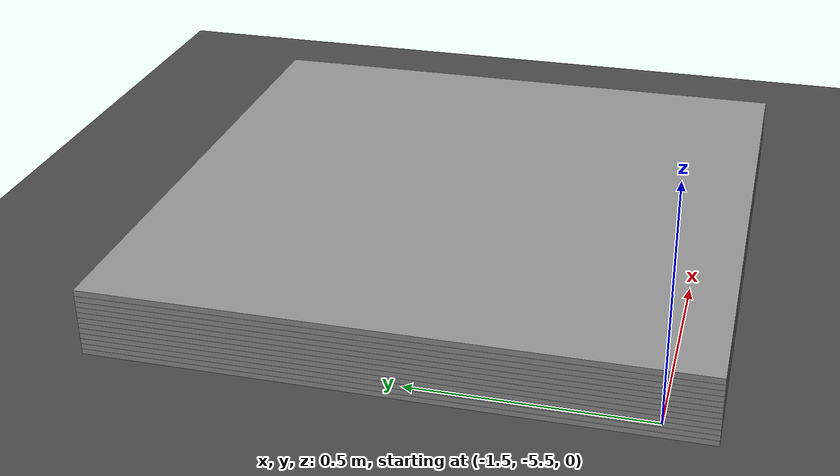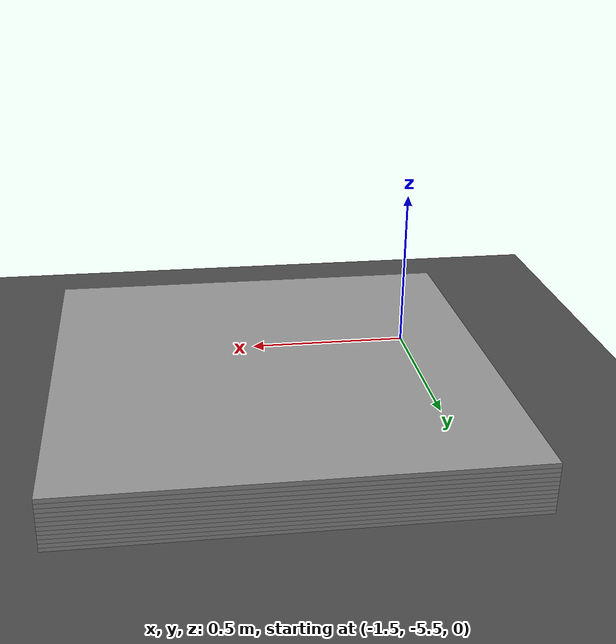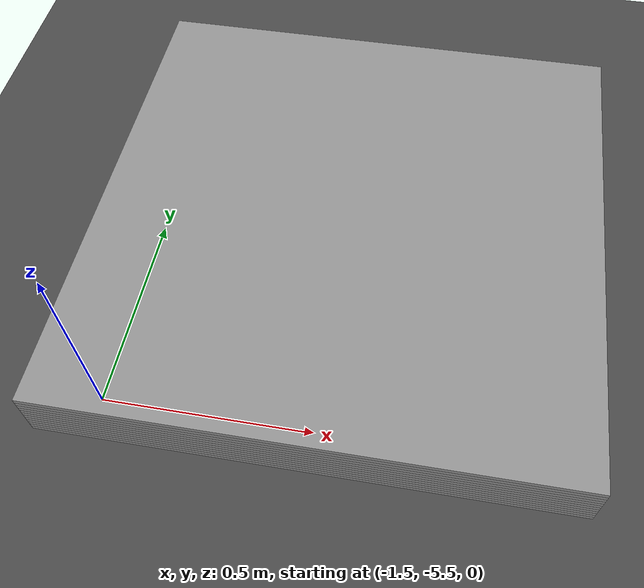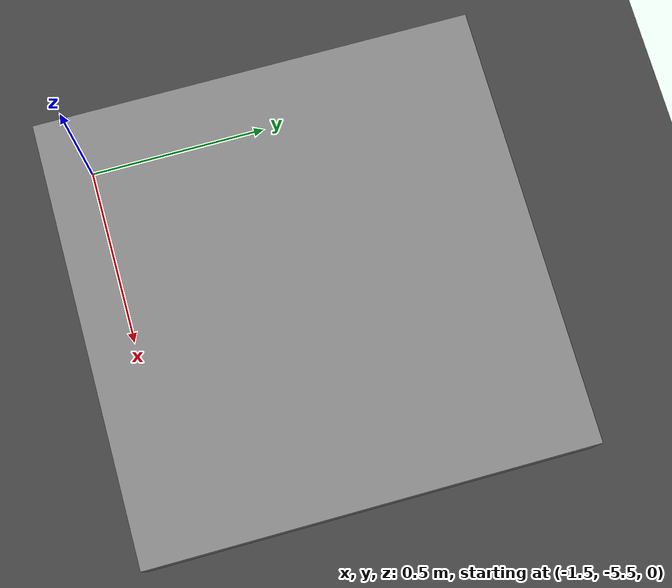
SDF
<sdf version="1.6">
 <world name="default">
  <light name="sun" type="directional">
   <pose>0 0 10 0 -0 0</pose>
   <diffuse>0.8 0.8 0.8 1</diffuse>
   <specular>0.2 0.2 0.2 1</specular>
   <attenuation>
    <range>1000</range>
    <constant>0.9</constant>
    <linear>0.01</linear>
    <quadratic>0.001</quadratic>
   </attenuation>
   <direction>-0.5 0.1 -0.9</direction>
  </light>
  <model name="ground_plane">
   <static>1</static>
   <link name="link">
    <collision name="collision">
     <geometry><plane><normal>0 0 1</normal><size>100 100</size></plane></geometry>
     <surface><friction><ode><mu>100</mu><mu2>50</mu2></ode></friction></surface>
    </collision>
    <visual name="visual">
     <cast_shadows>0</cast_shadows>
     <geometry><plane><normal>0 0 1</normal><size>100 100</size></plane></geometry>
     <material>
      <script><uri>file://media/materials/scripts/gazebo.material</uri><name>Gazebo/Grey</name></script>
     </material>
    </visual>
    <velocity_decay><linear>0</linear><angular>0</angular></velocity_decay>
   </link>
  </model>
  <physics name="default_physics" default="0" type="ode">
   <max_step_size>0.01</max_step_size>
   <real_time_factor>1</real_time_factor>
   <real_time_update_rate>100</real_time_update_rate>
  </physics>
  <scene><ambient>0.4 0.4 0.4 1</ambient><background>0.7 0.7 0.7 1</background><shadows>1</shadows></scene>
  <model name="asphalt_plane">
   <static>1</static>
   <link name="link">
    <collision name="collision"><geometry><box><size>20 20 0.1</size></box></geometry></collision>
    <visual name="visual">
     <cast_shadows>0</cast_shadows>
     <geometry><box><size>20 20 0.1</size></box></geometry>
     <material>
      <script>
       <uri>model://asphalt_plane/materials/scripts</uri>
       <uri>model://asphalt_plane/materials/textures</uri>
       <name>vrc/asphalt</name>
      </script>
     </material>
    </visual>
    <velocity_decay><linear>0</linear><angular>0</angular></velocity_decay>
   </link>
  </model>
  <gravity>0 0 -9.8</gravity>
  <magnetic_field>6e-06 2.3e-05 -4.2e-05</magnetic_field>
  <atmosphere type="adiabatic"/>
  <spherical_coordinates>
   <surface_model>EARTH_WGS84</surface_model>
   <latitude_deg>0</latitude_deg>
   <longitude_deg>0</longitude_deg>
   <elevation>0</elevation>
   <heading_deg>0</heading_deg>
  </spherical_coordinates>
  <model name="drywall_panel0">
   <static>0</static>
   <link name="link">
    <pose>0 0 0.6096 0 -0 0</pose>
    <collision name="collision">
     <geometry><box><size>1.2192 0.0127 1.2192</size></box></geometry>
     <surface><contact><ode><max_vel>0</max_vel><min_depth>0.001</min_depth></ode></contact></surface>
    </collision>
    <visual name="visual">
     <cast_shadows>0</cast_shadows>
     <geometry><box><size>1.2192 0.0127 1.2192</size></box></geometry>
     <material>
      <script>
       <uri>model://grey_wall/materials/scripts</uri>
       <uri>model://grey_wall/materials/textures</uri>
       <name>vrc/grey_wall</name>
      </script>
     </material>
    </visual>
    <inertial>
     <inertia><ixx>1</ixx><ixy>0</ixy><ixz>0</ixz><iyy>1</iyy><iyz>0</iyz><izz>1</izz></inertia>
     <mass>1</mass>
    </inertial>
   </link>
   <pose>-0.999992 -4.39039 0.055292 1.57078 1.1e-05 2e-06</pose>
  </model>
  <model name="drywall_panel1">
   <static>0</static>
   <link name="link">
    <pose>0 0 0.6096 0 -0 0</pose>
    <collision name="collision">
     <geometry><box><size>1.2192 0.0127 1.2192</size></box></geometry>
     <surface><contact><ode><max_vel>0</max_vel><min_depth>0.001</min_depth></ode></contact></surface>
    </collision>
    <visual name="visual">
     <cast_shadows>0</cast_shadows>
     <geometry><box><size>1.2192 0.0127 1.2192</size></box></geometry>
     <material>
      <script>
       <uri>model://grey_wall/materials/scripts</uri>
       <uri>model://grey_wall/materials/textures</uri>
       <name>vrc/grey_wall</name>
      </script>
     </material>
    </visual>
    <inertial>
     <inertia><ixx>1</ixx><ixy>0</ixy><ixz>0</ixz><iyy>1</iyy><iyz>0</iyz><izz>1</izz></inertia>
     <mass>1</mass>
    </inertial>
   </link>
   <pose>-0.999963 -4.39036 0.066949 1.57075 3.1e-05 1.2e-05</pose>
  </model>
  <model name="drywall_panel2">
   <static>0</static>
   <link name="link">
    <pose>0 0 0.6096 0 -0 0</pose>
    <collision name="collision">
     <geometry><box><size>1.2192 0.0127 1.2192</size></box></geometry>
     <surface><contact><ode><max_vel>0</max_vel><min_depth>0.001</min_depth></ode></contact></surface>
    </collision>
    <visual name="visual">
     <cast_shadows>0</cast_shadows>
     <geometry><box><size>1.2192 0.0127 1.2192</size></box></geometry>
     <material>
      <script>
       <uri>model://grey_wall/materials/scripts</uri>
       <uri>model://grey_wall/materials/textures</uri>
       <name>vrc/grey_wall</name>
      </script>
     </material>
    </visual>
    <inertial>
     <inertia><ixx>1</ixx><ixy>0</ixy><ixz>0</ixz><iyy>1</iyy><iyz>0</iyz><izz>1</izz></inertia>
     <mass>1</mass>
    </inertial>
   </link>
   <pose>-0.999936 -4.39032 0.078615 1.57074 4.7e-05 2.2e-05</pose>
  </model>
  <model name="drywall_panel3">
   <static>0</static>
   <link name="link">
    <pose>0 0 0.6096 0 -0 0</pose>
    <collision name="collision">
     <geometry><box><size>1.2192 0.0127 1.2192</size></box></geometry>
     <surface><contact><ode><max_vel>0</max_vel><min_depth>0.001</min_depth></ode></contact></surface>
    </collision>
    <visual name="visual">
     <cast_shadows>0</cast_shadows>
     <geometry><box><size>1.2192 0.0127 1.2192</size></box></geometry>
     <material>
      <script>
       <uri>model://grey_wall/materials/scripts</uri>
       <uri>model://grey_wall/materials/textures</uri>
       <name>vrc/grey_wall</name>
      </script>
     </material>
    </visual>
    <inertial>
     <inertia><ixx>1</ixx><ixy>0</ixy><ixz>0</ixz><iyy>1</iyy><iyz>0</iyz><izz>1</izz></inertia>
     <mass>1</mass>
    </inertial>
   </link>
   <pose>-0.999911 -4.39029 0.090293 1.57073 5.8e-05 3.7e-05</pose>
  </model>
  <model name="drywall_panel4">
   <static>0</static>
   <link name="link">
    <pose>0 0 0.6096 0 -0 0</pose>
    <collision name="collision">
     <geometry><box><size>1.2192 0.0127 1.2192</size></box></geometry>
     <surface><contact><ode><max_vel>0</max_vel><min_depth>0.001</min_depth></ode></contact></surface>
    </collision>
    <visual name="visual">
     <cast_shadows>0</cast_shadows>
     <geometry><box><size>1.2192 0.0127 1.2192</size></box></geometry>
     <material>
      <script>
       <uri>model://grey_wall/materials/scripts</uri>
       <uri>model://grey_wall/materials/textures</uri>
       <name>vrc/grey_wall</name>
      </script>
     </material>
    </visual>
    <inertial>
     <inertia><ixx>1</ixx><ixy>0</ixy><ixz>0</ixz><iyy>1</iyy><iyz>0</iyz><izz>1</izz></inertia>
     <mass>1</mass>
    </inertial>
   </link>
   <pose>-0.999889 -4.39026 0.101983 1.57073 6.5e-05 5.1e-05</pose>
  </model>
  <model name="drywall_panel5">
   <static>0</static>
   <link name="link">
    <pose>0 0 0.6096 0 -0 0</pose>
    <collision name="collision">
     <geometry><box><size>1.2192 0.0127 1.2192</size></box></geometry>
     <surface><contact><ode><max_vel>0</max_vel><min_depth>0.001</min_depth></ode></contact></surface>
    </collision>
    <visual name="visual">
     <cast_shadows>0</cast_shadows>
     <geometry><box><size>1.2192 0.0127 1.2192</size></box></geometry>
     <material>
      <script>
       <uri>model://grey_wall/materials/scripts</uri>
       <uri>model://grey_wall/materials/textures</uri>
       <name>vrc/grey_wall</name>
      </script>
     </material>
    </visual>
    <inertial>
     <inertia><ixx>1</ixx><ixy>0</ixy><ixz>0</ixz><iyy>1</iyy><iyz>0</iyz><izz>1</izz></inertia>
     <mass>1</mass>
    </inertial>
   </link>
   <pose>-0.99987 -4.39023 0.113681 1.57075 4.7e-05 6.1e-05</pose>
  </model>
  <model name="drywall_panel6">
   <static>0</static>
   <link name="link">
    <pose>0 0 0.6096 0 -0 0</pose>
    <collision name="collision">
     <geometry><box><size>1.2192 0.0127 1.2192</size></box></geometry>
     <surface><contact><ode><max_vel>0</max_vel><min_depth>0.001</min_depth></ode></contact></surface>
    </collision>
    <visual name="visual">
     <cast_shadows>0</cast_shadows>
     <geometry><box><size>1.2192 0.0127 1.2192</size></box></geometry>
     <material>
      <script>
       <uri>model://grey_wall/materials/scripts</uri>
       <uri>model://grey_wall/materials/textures</uri>
       <name>vrc/grey_wall</name>
      </script>
     </material>
    </visual>
    <inertial>
     <inertia><ixx>1</ixx><ixy>0</ixy><ixz>0</ixz><iyy>1</iyy><iyz>0</iyz><izz>1</izz></inertia>
     <mass>1</mass>
    </inertial>
   </link>
   <pose>-0.999858 -4.3902 0.125403 1.57077 -3e-06 7.1e-05</pose>
  </model>
  <model name="drywall_panel7">
   <static>0</static>
   <link name="link">
    <pose>0 0 0.6096 0 -0 0</pose>
    <collision name="collision">
     <geometry><box><size>1.2192 0.0127 1.2192</size></box></geometry>
     <surface><contact><ode><max_vel>0</max_vel><min_depth>0.001</min_depth></ode></contact></surface>
    </collision>
    <visual name="visual">
     <cast_shadows>0</cast_shadows>
     <geometry><box><size>1.2192 0.0127 1.2192</size></box></geometry>
     <material>
      <script>
       <uri>model://grey_wall/materials/scripts</uri>
       <uri>model://grey_wall/materials/textures</uri>
       <name>vrc/grey_wall</name>
      </script>
     </material>
    </visual>
    <inertial>
     <inertia><ixx>1</ixx><ixy>0</ixy><ixz>0</ixz><iyy>1</iyy><iyz>0</iyz><izz>1</izz></inertia>
     <mass>1</mass>
    </inertial>
   </link>
   <pose>-0.999848 -4.39018 0.137111 1.57079 -3.2e-05 7.8e-05</pose>
  </model>
  <model name="drywall_panel8">
   <static>0</static>
   <link name="link">
    <pose>0 0 0.6096 0 -0 0</pose>
    <collision name="collision">
     <geometry><box><size>1.2192 0.0127 1.2192</size></box></geometry>
     <surface><contact><ode><max_vel>0</max_vel><min_depth>0.001</min_depth></ode></contact></surface>
    </collision>
    <visual name="visual">
     <cast_shadows>0</cast_shadows>
     <geometry><box><size>1.2192 0.0127 1.2192</size></box></geometry>
     <material>
      <script>
       <uri>model://grey_wall/materials/scripts</uri>
       <uri>model://grey_wall/materials/textures</uri>
       <name>vrc/grey_wall</name>
      </script>
     </material>
    </visual>
    <inertial>
     <inertia><ixx>1</ixx><ixy>0</ixy><ixz>0</ixz><iyy>1</iyy><iyz>0</iyz><izz>1</izz></inertia>
     <mass>1</mass>
    </inertial>
   </link>
   <pose>-0.999841 -4.39015 0.148909 1.57072 -0.000177 8.4e-05</pose>
  </model>
  <model name="drywall_panel9">
   <static>0</static>
   <link name="link">
    <pose>0 0 0.6096 0 -0 0</pose>
    <collision name="collision">
     <geometry><box><size>1.2192 0.0127 1.2192</size></box></geometry>
     <surface><contact><ode><max_vel>0</max_vel><min_depth>0.001</min_depth></ode></contact></surface>
    </collision>
    <visual name="visual">
     <cast_shadows>0</cast_shadows>
     <geometry><box><size>1.2192 0.0127 1.2192</size></box></geometry>
     <material>
      <script>
       <uri>model://grey_wall/materials/scripts</uri>
       <uri>model://grey_wall/materials/textures</uri>
       <name>vrc/grey_wall</name>
      </script>
     </material>
    </visual>
    <inertial>
     <inertia><ixx>1</ixx><ixy>0</ixy><ixz>0</ixz><iyy>1</iyy><iyz>0</iyz><izz>1</izz></inertia>
     <mass>1</mass>
    </inertial>
   </link>
   <pose>-0.999839 -4.39013 0.160851 1.57064 -0.000411 8.8e-05</pose>
  </model>
  <model name="drywall_panel10">
   <static>0</static>
   <link name="link">
    <pose>0 0 0.6096 0 -0 0</pose>
    <collision name="collision">
     <geometry><box><size>1.2192 0.0127 1.2192</size></box></geometry>
     <surface><contact><ode><max_vel>0</max_vel><min_depth>0.001</min_depth></ode></contact></surface>
    </collision>
    <visual name="visual">
     <cast_shadows>0</cast_shadows>
     <geometry><box><size>1.2192 0.0127 1.2192</size></box></geometry>
     <material>
      <script>
       <uri>model://grey_wall/materials/scripts</uri>
       <uri>model://grey_wall/materials/textures</uri>
       <name>vrc/grey_wall</name>
      </script>
     </material>
    </visual>
    <inertial>
     <inertia><ixx>1</ixx><ixy>0</ixy><ixz>0</ixz><iyy>1</iyy><iyz>0</iyz><izz>1</izz></inertia>
     <mass>1</mass>
    </inertial>
   </link>
   <pose>-0.999841 -4.39012 0.173113 1.57058 -0.000595 9e-05</pose>
  </model>
  <model name="drywall_panel11">
   <static>0</static>
   <link name="link">
    <pose>0 0 0.6096 0 -0 0</pose>
    <collision name="collision">
     <geometry><box><size>1.2192 0.0127 1.2192</size></box></geometry>
     <surface><contact><ode><max_vel>0</max_vel><min_depth>0.001</min_depth></ode></contact></surface>
    </collision>
    <visual name="visual">
     <cast_shadows>0</cast_shadows>
     <geometry><box><size>1.2192 0.0127 1.2192</size></box></geometry>
     <material>
      <script>
       <uri>model://grey_wall/materials/scripts</uri>
       <uri>model://grey_wall/materials/textures</uri>
       <name>vrc/grey_wall</name>
      </script>
     </material>
    </visual>
    <inertial>
     <inertia><ixx>1</ixx><ixy>0</ixy><ixz>0</ixz><iyy>1</iyy><iyz>0</iyz><izz>1</izz></inertia>
     <mass>1</mass>
    </inertial>
   </link>
   <pose>-0.999846 -4.39011 0.185684 1.57056 -0.000646 9e-05</pose>
  </model>
 </world>
</sdf>
